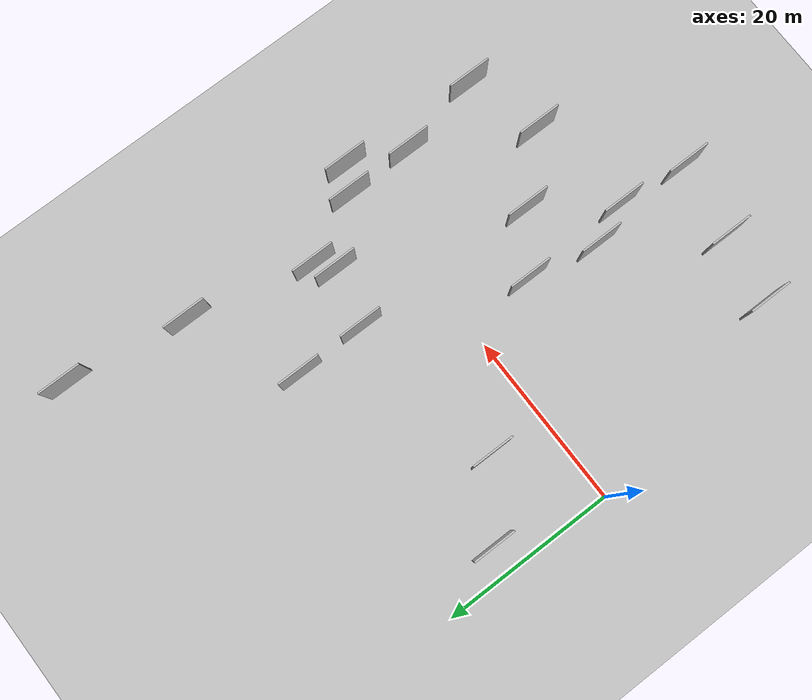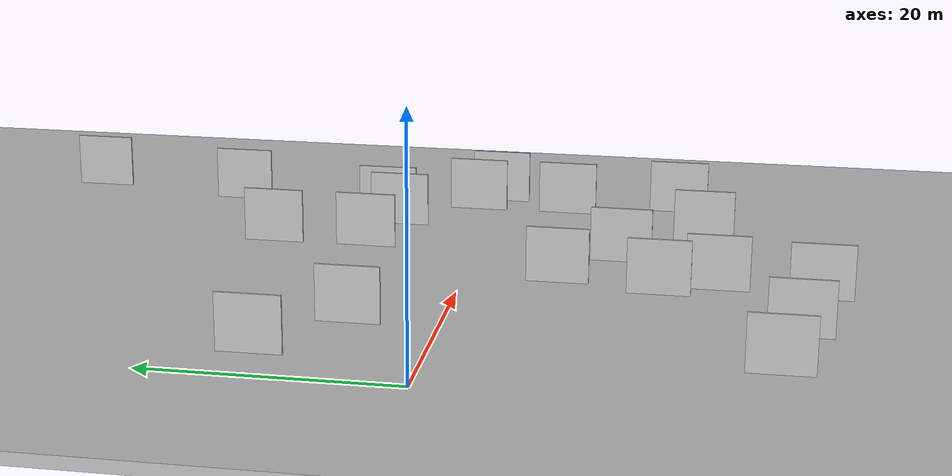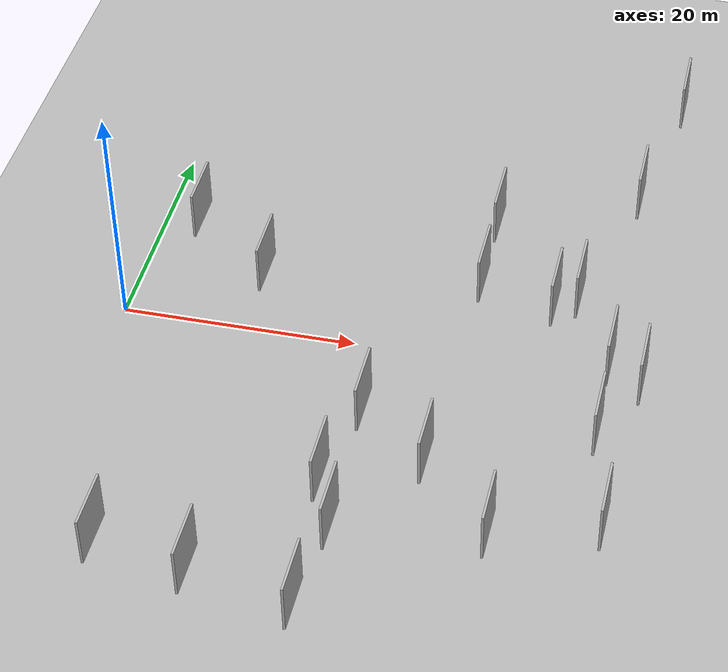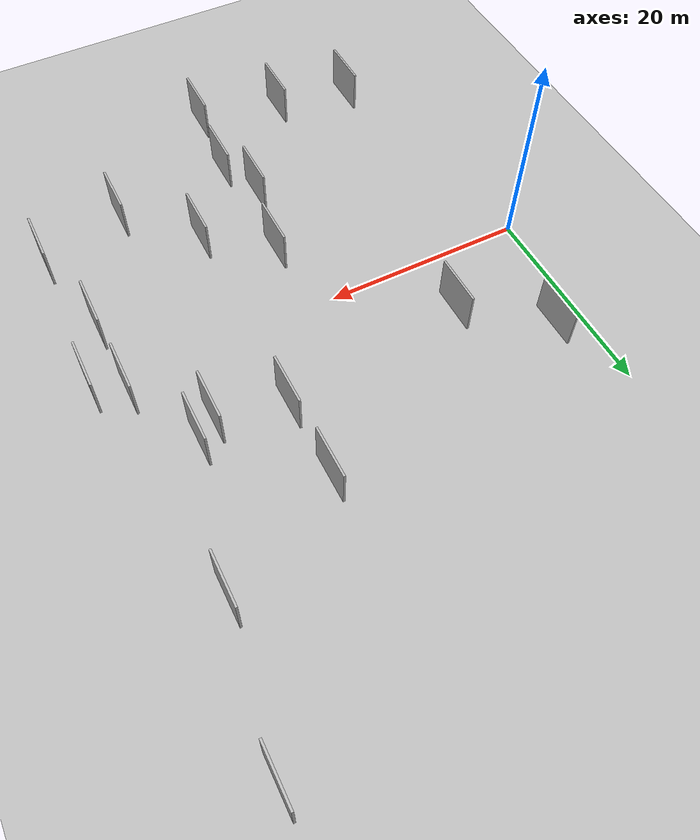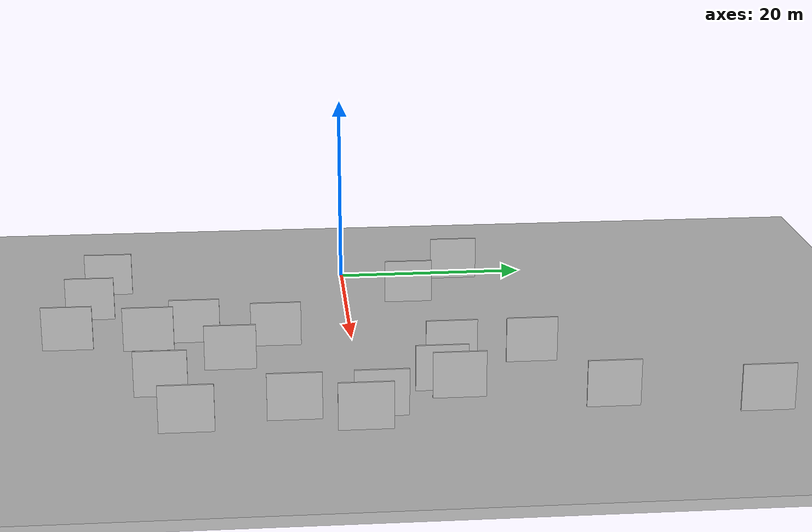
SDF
<?xml version="1.0" encoding="utf-8"?>

<sdf version="1.6">

   <world name="default">

      <gui fullscreen="0">

         <camera name="user_camera">

            <pose>-15 0 4.57585 0 0 0</pose>

            <view_controller>orbit</view_controller>

         </camera>

      </gui>

      <scene>

         <sky>

           <clouds>

             <speed>12</speed>

           </clouds>

         </sky>

         <ambient>0.4 0.4 0.4 1</ambient>

         <background>0.7 0.7 0.7 1</background>

         <shadows>1</shadows>

      </scene>

      <gravity>0 0 -9.8066</gravity>

      <magnetic_field>6e-06 2.3e-05 -4.2e-05</magnetic_field>

      <physics default="0" name="default_physics" type="ode">

         <ode>

            <solver>

               <type>quick</type>

               <iters>10</iters>

               <sor>1.0</sor>

               <use_dynamic_moi_rescaling>0</use_dynamic_moi_rescaling>

            </solver>

            <constraints>

               <cfm>0</cfm>

               <erp>0.2</erp>

               <contact_max_correcting_vel>100</contact_max_correcting_vel>

               <contact_surface_layer>0.001</contact_surface_layer>

            </constraints>

         </ode>

         <max_step_size>0.004</max_step_size>

         <real_time_factor>1</real_time_factor>

         <real_time_update_rate>250</real_time_update_rate>

      </physics>

      <light name="sun" type="directional">

         <cast_shadows>1</cast_shadows>

         <pose>0 0 10 0 0 0</pose>

         <diffuse>0.8 0.8 0.8 1</diffuse>

         <specular>0.2 0.2 0.2 1</specular>

         <attenuation>

            <range>1000</range>

            <constant>0.9</constant>

            <linear>0.01</linear>

            <quadratic>0.001</quadratic>

         </attenuation>

         <direction>-0.5 0.1 -0.9</direction>

      </light>

      <include>

         <name>ground_plane_1</name>

         <uri>model://HANNAS_ground_plane</uri>

         <pose>0 0 0  0 0 0</pose>

      </include>

      <include>

         <name>ground_plane_2</name>

         <uri>model://HANNAS_ground_plane</uri>

         <pose>100 0 0  0 0 0</pose>

      </include>

      <model name="HANNAS_wall_1">

         <static>1</static>

         <pose frame="">28.6454 -12.1876 0.0 0.000000 0.000000 1.570796</pose>

         <link name="link">

            <pose frame="">0 0 2.50 0 0 0</pose>

            <collision name="collision">

               <geometry>

                  <box>

                     <size>5.00 0.2 5.00</size>

                  </box>

               </geometry>

               <max_contacts>10</max_contacts>

               <surface>

                  <contact>

                     <ode/>

                  </contact>

                  <bounce/>

                  <friction>

                     <torsional>

                        <ode/>

                     </torsional>

                     <ode/>

                  </friction>

               </surface>

            </collision>

            <visual name="visual">

               <cast_shadows>0</cast_shadows>

               <geometry>

                  <box>

                     <size>5.00 0.2 5.00</size>

                  </box>

               </geometry>

               <material>

                  <script>

                     <uri>model://HANNAS_wall/materials/scripts</uri>

                     <uri>model://HANNAS_wall/materials/textures</uri>

                     <name>vrc/HANNAS_wall</name>

                  </script>

               </material>

            </visual>

            <self_collide>0</self_collide>

            <enable_wind>0</enable_wind>

            <kinematic>0</kinematic>

         </link>

      </model>

      <model name="HANNAS_wall_2">

         <static>1</static>

         <pose frame="">22.1348 -28.3118 0.0 0.000000 0.000000 1.570796</pose>

         <link name="link">

            <pose frame="">0 0 2.50 0 0 0</pose>

            <collision name="collision">

               <geometry>

                  <box>

                     <size>5.00 0.2 5.00</size>

                  </box>

               </geometry>

               <max_contacts>10</max_contacts>

               <surface>

                  <contact>

                     <ode/>

                  </contact>

                  <bounce/>

                  <friction>

                     <torsional>

                        <ode/>

                     </torsional>

                     <ode/>

                  </friction>

               </surface>

            </collision>

            <visual name="visual">

               <cast_shadows>0</cast_shadows>

               <geometry>

                  <box>

                     <size>5.00 0.2 5.00</size>

                  </box>

               </geometry>

               <material>

                  <script>

                     <uri>model://HANNAS_wall/materials/scripts</uri>

                     <uri>model://HANNAS_wall/materials/textures</uri>

                     <name>vrc/HANNAS_wall</name>

                  </script>

               </material>

            </visual>

            <self_collide>0</self_collide>

            <enable_wind>0</enable_wind>

            <kinematic>0</kinematic>

         </link>

      </model>

      <model name="HANNAS_wall_3">

         <static>1</static>

         <pose frame="">10.5982 6.6313 0.0 0.000000 0.000000 1.570796</pose>

         <link name="link">

            <pose frame="">0 0 2.50 0 0 0</pose>

            <collision name="collision">

               <geometry>

                  <box>

                     <size>5.00 0.2 5.00</size>

                  </box>

               </geometry>

               <max_contacts>10</max_contacts>

               <surface>

                  <contact>

                     <ode/>

                  </contact>

                  <bounce/>

                  <friction>

                     <torsional>

                        <ode/>

                     </torsional>

                     <ode/>

                  </friction>

               </surface>

            </collision>

            <visual name="visual">

               <cast_shadows>0</cast_shadows>

               <geometry>

                  <box>

                     <size>5.00 0.2 5.00</size>

                  </box>

               </geometry>

               <material>

                  <script>

                     <uri>model://HANNAS_wall/materials/scripts</uri>

                     <uri>model://HANNAS_wall/materials/textures</uri>

                     <name>vrc/HANNAS_wall</name>

                  </script>

               </material>

            </visual>

            <self_collide>0</self_collide>

            <enable_wind>0</enable_wind>

            <kinematic>0</kinematic>

         </link>

      </model>

      <model name="HANNAS_wall_4">

         <static>1</static>

         <pose frame="">21.0218 -15.7908 0.0 0.000000 0.000000 1.570796</pose>

         <link name="link">

            <pose frame="">0 0 2.50 0 0 0</pose>

            <collision name="collision">

               <geometry>

                  <box>

                     <size>5.00 0.2 5.00</size>

                  </box>

               </geometry>

               <max_contacts>10</max_contacts>

               <surface>

                  <contact>

                     <ode/>

                  </contact>

                  <bounce/>

                  <friction>

                     <torsional>

                        <ode/>

                     </torsional>

                     <ode/>

                  </friction>

               </surface>

            </collision>

            <visual name="visual">

               <cast_shadows>0</cast_shadows>

               <geometry>

                  <box>

                     <size>5.00 0.2 5.00</size>

                  </box>

               </geometry>

               <material>

                  <script>

                     <uri>model://HANNAS_wall/materials/scripts</uri>

                     <uri>model://HANNAS_wall/materials/textures</uri>

                     <name>vrc/HANNAS_wall</name>

                  </script>

               </material>

            </visual>

            <self_collide>0</self_collide>

            <enable_wind>0</enable_wind>

            <kinematic>0</kinematic>

         </link>

      </model>

      <model name="HANNAS_wall_5">

         <static>1</static>

         <pose frame="">22.5638 -7.6888 0.0 0.000000 0.000000 1.570796</pose>

         <link name="link">

            <pose frame="">0 0 2.50 0 0 0</pose>

            <collision name="collision">

               <geometry>

                  <box>

                     <size>5.00 0.2 5.00</size>

                  </box>

               </geometry>

               <max_contacts>10</max_contacts>

               <surface>

                  <contact>

                     <ode/>

                  </contact>

                  <bounce/>

                  <friction>

                     <torsional>

                        <ode/>

                     </torsional>

                     <ode/>

                  </friction>

               </surface>

            </collision>

            <visual name="visual">

               <cast_shadows>0</cast_shadows>

               <geometry>

                  <box>

                     <size>5.00 0.2 5.00</size>

                  </box>

               </geometry>

               <material>

                  <script>

                     <uri>model://HANNAS_wall/materials/scripts</uri>

                     <uri>model://HANNAS_wall/materials/textures</uri>

                     <name>vrc/HANNAS_wall</name>

                  </script>

               </material>

            </visual>

            <self_collide>0</self_collide>

            <enable_wind>0</enable_wind>

            <kinematic>0</kinematic>

         </link>

      </model>

      <model name="HANNAS_wall_6">

         <static>1</static>

         <pose frame="">41.3682 -6.3528 0.0 0.000000 0.000000 1.570796</pose>

         <link name="link">

            <pose frame="">0 0 2.50 0 0 0</pose>

            <collision name="collision">

               <geometry>

                  <box>

                     <size>5.00 0.2 5.00</size>

                  </box>

               </geometry>

               <max_contacts>10</max_contacts>

               <surface>

                  <contact>

                     <ode/>

                  </contact>

                  <bounce/>

                  <friction>

                     <torsional>

                        <ode/>

                     </torsional>

                     <ode/>

                  </friction>

               </surface>

            </collision>

            <visual name="visual">

               <cast_shadows>0</cast_shadows>

               <geometry>

                  <box>

                     <size>5.00 0.2 5.00</size>

                  </box>

               </geometry>

               <material>

                  <script>

                     <uri>model://HANNAS_wall/materials/scripts</uri>

                     <uri>model://HANNAS_wall/materials/textures</uri>

                     <name>vrc/HANNAS_wall</name>

                  </script>

               </material>

            </visual>

            <self_collide>0</self_collide>

            <enable_wind>0</enable_wind>

            <kinematic>0</kinematic>

         </link>

      </model>

      <model name="HANNAS_wall_7">

         <static>1</static>

         <pose frame="">34.8603 -18.6025 0.0 0.000000 0.000000 1.570796</pose>

         <link name="link">

            <pose frame="">0 0 2.50 0 0 0</pose>

            <collision name="collision">

               <geometry>

                  <box>

                     <size>5.00 0.2 5.00</size>

                  </box>

               </geometry>

               <max_contacts>10</max_contacts>

               <surface>

                  <contact>

                     <ode/>

                  </contact>

                  <bounce/>

                  <friction>

                     <torsional>

                        <ode/>

                     </torsional>

                     <ode/>

                  </friction>

               </surface>

            </collision>

            <visual name="visual">

               <cast_shadows>0</cast_shadows>

               <geometry>

                  <box>

                     <size>5.00 0.2 5.00</size>

                  </box>

               </geometry>

               <material>

                  <script>

                     <uri>model://HANNAS_wall/materials/scripts</uri>

                     <uri>model://HANNAS_wall/materials/textures</uri>

                     <name>vrc/HANNAS_wall</name>

                  </script>

               </material>

            </visual>

            <self_collide>0</self_collide>

            <enable_wind>0</enable_wind>

            <kinematic>0</kinematic>

         </link>

      </model>

      <model name="HANNAS_wall_8">

         <static>1</static>

         <pose frame="">13.5026 -26.7712 0.0 0.000000 0.000000 1.570796</pose>

         <link name="link">

            <pose frame="">0 0 2.50 0 0 0</pose>

            <collision name="collision">

               <geometry>

                  <box>

                     <size>5.00 0.2 5.00</size>

                  </box>

               </geometry>

               <max_contacts>10</max_contacts>

               <surface>

                  <contact>

                     <ode/>

                  </contact>

                  <bounce/>

                  <friction>

                     <torsional>

                        <ode/>

                     </torsional>

                     <ode/>

                  </friction>

               </surface>

            </collision>

            <visual name="visual">

               <cast_shadows>0</cast_shadows>

               <geometry>

                  <box>

                     <size>5.00 0.2 5.00</size>

                  </box>

               </geometry>

               <material>

                  <script>

                     <uri>model://HANNAS_wall/materials/scripts</uri>

                     <uri>model://HANNAS_wall/materials/textures</uri>

                     <name>vrc/HANNAS_wall</name>

                  </script>

               </material>

            </visual>

            <self_collide>0</self_collide>

            <enable_wind>0</enable_wind>

            <kinematic>0</kinematic>

         </link>

      </model>

      <model name="HANNAS_wall_9">

         <static>1</static>

         <pose frame="">29.1081 9.2058 0.0 0.000000 0.000000 1.570796</pose>

         <link name="link">

            <pose frame="">0 0 2.50 0 0 0</pose>

            <collision name="collision">

               <geometry>

                  <box>

                     <size>5.00 0.2 5.00</size>

                  </box>

               </geometry>

               <max_contacts>10</max_contacts>

               <surface>

                  <contact>

                     <ode/>

                  </contact>

                  <bounce/>

                  <friction>

                     <torsional>

                        <ode/>

                     </torsional>

                     <ode/>

                  </friction>

               </surface>

            </collision>

            <visual name="visual">

               <cast_shadows>0</cast_shadows>

               <geometry>

                  <box>

                     <size>5.00 0.2 5.00</size>

                  </box>

               </geometry>

               <material>

                  <script>

                     <uri>model://HANNAS_wall/materials/scripts</uri>

                     <uri>model://HANNAS_wall/materials/textures</uri>

                     <name>vrc/HANNAS_wall</name>

                  </script>

               </material>

            </visual>

            <self_collide>0</self_collide>

            <enable_wind>0</enable_wind>

            <kinematic>0</kinematic>

         </link>

      </model>

      <model name="HANNAS_wall_10">

         <static>1</static>

         <pose frame="">42.8829 36.6577 0.0 0.000000 0.000000 1.570796</pose>

         <link name="link">

            <pose frame="">0 0 2.50 0 0 0</pose>

            <collision name="collision">

               <geometry>

                  <box>

                     <size>5.00 0.2 5.00</size>

                  </box>

               </geometry>

               <max_contacts>10</max_contacts>

               <surface>

                  <contact>

                     <ode/>

                  </contact>

                  <bounce/>

                  <friction>

                     <torsional>

                        <ode/>

                     </torsional>

                     <ode/>

                  </friction>

               </surface>

            </collision>

            <visual name="visual">

               <cast_shadows>0</cast_shadows>

               <geometry>

                  <box>

                     <size>5.00 0.2 5.00</size>

                  </box>

               </geometry>

               <material>

                  <script>

                     <uri>model://HANNAS_wall/materials/scripts</uri>

                     <uri>model://HANNAS_wall/materials/textures</uri>

                     <name>vrc/HANNAS_wall</name>

                  </script>

               </material>

            </visual>

            <self_collide>0</self_collide>

            <enable_wind>0</enable_wind>

            <kinematic>0</kinematic>

         </link>

      </model>

      <model name="HANNAS_wall_11">

         <static>1</static>

         <pose frame="">37.4778 9.0124 0.0 0.000000 0.000000 1.570796</pose>

         <link name="link">

            <pose frame="">0 0 2.50 0 0 0</pose>

            <collision name="collision">

               <geometry>

                  <box>

                     <size>5.00 0.2 5.00</size>

                  </box>

               </geometry>

               <max_contacts>10</max_contacts>

               <surface>

                  <contact>

                     <ode/>

                  </contact>

                  <bounce/>

                  <friction>

                     <torsional>

                        <ode/>

                     </torsional>

                     <ode/>

                  </friction>

               </surface>

            </collision>

            <visual name="visual">

               <cast_shadows>0</cast_shadows>

               <geometry>

                  <box>

                     <size>5.00 0.2 5.00</size>

                  </box>

               </geometry>

               <material>

                  <script>

                     <uri>model://HANNAS_wall/materials/scripts</uri>

                     <uri>model://HANNAS_wall/materials/textures</uri>

                     <name>vrc/HANNAS_wall</name>

                  </script>

               </material>

            </visual>

            <self_collide>0</self_collide>

            <enable_wind>0</enable_wind>

            <kinematic>0</kinematic>

         </link>

      </model>

      <model name="HANNAS_wall_12">

         <static>1</static>

         <pose frame="">41.2014 1.5104 0.0 0.000000 0.000000 1.570796</pose>

         <link name="link">

            <pose frame="">0 0 2.50 0 0 0</pose>

            <collision name="collision">

               <geometry>

                  <box>

                     <size>5.00 0.2 5.00</size>

                  </box>

               </geometry>

               <max_contacts>10</max_contacts>

               <surface>

                  <contact>

                     <ode/>

                  </contact>

                  <bounce/>

                  <friction>

                     <torsional>

                        <ode/>

                     </torsional>

                     <ode/>

                  </friction>

               </surface>

            </collision>

            <visual name="visual">

               <cast_shadows>0</cast_shadows>

               <geometry>

                  <box>

                     <size>5.00 0.2 5.00</size>

                  </box>

               </geometry>

               <material>

                  <script>

                     <uri>model://HANNAS_wall/materials/scripts</uri>

                     <uri>model://HANNAS_wall/materials/textures</uri>

                     <name>vrc/HANNAS_wall</name>

                  </script>

               </material>

            </visual>

            <self_collide>0</self_collide>

            <enable_wind>0</enable_wind>

            <kinematic>0</kinematic>

         </link>

      </model>

      <model name="HANNAS_wall_13">

         <static>1</static>

         <pose frame="">22.9232 -20.3038 0.0 0.000000 0.000000 1.570796</pose>

         <link name="link">

            <pose frame="">0 0 2.50 0 0 0</pose>

            <collision name="collision">

               <geometry>

                  <box>

                     <size>5.00 0.2 5.00</size>

                  </box>

               </geometry>

               <max_contacts>10</max_contacts>

               <surface>

                  <contact>

                     <ode/>

                  </contact>

                  <bounce/>

                  <friction>

                     <torsional>

                        <ode/>

                     </torsional>

                     <ode/>

                  </friction>

               </surface>

            </collision>

            <visual name="visual">

               <cast_shadows>0</cast_shadows>

               <geometry>

                  <box>

                     <size>5.00 0.2 5.00</size>

                  </box>

               </geometry>

               <material>

                  <script>

                     <uri>model://HANNAS_wall/materials/scripts</uri>

                     <uri>model://HANNAS_wall/materials/textures</uri>

                     <name>vrc/HANNAS_wall</name>

                  </script>

               </material>

            </visual>

            <self_collide>0</self_collide>

            <enable_wind>0</enable_wind>

            <kinematic>0</kinematic>

         </link>

      </model>

      <model name="HANNAS_wall_14">

         <static>1</static>

         <pose frame="">35.5933 7.5890 0.0 0.000000 0.000000 1.570796</pose>

         <link name="link">

            <pose frame="">0 0 2.50 0 0 0</pose>

            <collision name="collision">

               <geometry>

                  <box>

                     <size>5.00 0.2 5.00</size>

                  </box>

               </geometry>

               <max_contacts>10</max_contacts>

               <surface>

                  <contact>

                     <ode/>

                  </contact>

                  <bounce/>

                  <friction>

                     <torsional>

                        <ode/>

                     </torsional>

                     <ode/>

                  </friction>

               </surface>

            </collision>

            <visual name="visual">

               <cast_shadows>0</cast_shadows>

               <geometry>

                  <box>

                     <size>5.00 0.2 5.00</size>

                  </box>

               </geometry>

               <material>

                  <script>

                     <uri>model://HANNAS_wall/materials/scripts</uri>

                     <uri>model://HANNAS_wall/materials/textures</uri>

                     <name>vrc/HANNAS_wall</name>

                  </script>

               </material>

            </visual>

            <self_collide>0</self_collide>

            <enable_wind>0</enable_wind>

            <kinematic>0</kinematic>

         </link>

      </model>

      <model name="HANNAS_wall_15">

         <static>1</static>

         <pose frame="">3.2095 12.2558 0.0 0.000000 0.000000 1.570796</pose>

         <link name="link">

            <pose frame="">0 0 2.50 0 0 0</pose>

            <collision name="collision">

               <geometry>

                  <box>

                     <size>5.00 0.2 5.00</size>

                  </box>

               </geometry>

               <max_contacts>10</max_contacts>

               <surface>

                  <contact>

                     <ode/>

                  </contact>

                  <bounce/>

                  <friction>

                     <torsional>

                        <ode/>

                     </torsional>

                     <ode/>

                  </friction>

               </surface>

            </collision>

            <visual name="visual">

               <cast_shadows>0</cast_shadows>

               <geometry>

                  <box>

                     <size>5.00 0.2 5.00</size>

                  </box>

               </geometry>

               <material>

                  <script>

                     <uri>model://HANNAS_wall/materials/scripts</uri>

                     <uri>model://HANNAS_wall/materials/textures</uri>

                     <name>vrc/HANNAS_wall</name>

                  </script>

               </material>

            </visual>

            <self_collide>0</self_collide>

            <enable_wind>0</enable_wind>

            <kinematic>0</kinematic>

         </link>

      </model>

      <model name="HANNAS_wall_16">

         <static>1</static>

         <pose frame="">44.0792 -0.1010 0.0 0.000000 0.000000 1.570796</pose>

         <link name="link">

            <pose frame="">0 0 2.50 0 0 0</pose>

            <collision name="collision">

               <geometry>

                  <box>

                     <size>5.00 0.2 5.00</size>

                  </box>

               </geometry>

               <max_contacts>10</max_contacts>

               <surface>

                  <contact>

                     <ode/>

                  </contact>

                  <bounce/>

                  <friction>

                     <torsional>

                        <ode/>

                     </torsional>

                     <ode/>

                  </friction>

               </surface>

            </collision>

            <visual name="visual">

               <cast_shadows>0</cast_shadows>

               <geometry>

                  <box>

                     <size>5.00 0.2 5.00</size>

                  </box>

               </geometry>

               <material>

                  <script>

                     <uri>model://HANNAS_wall/materials/scripts</uri>

                     <uri>model://HANNAS_wall/materials/textures</uri>

                     <name>vrc/HANNAS_wall</name>

                  </script>

               </material>

            </visual>

            <self_collide>0</self_collide>

            <enable_wind>0</enable_wind>

            <kinematic>0</kinematic>

         </link>

      </model>

      <model name="HANNAS_wall_17">

         <static>1</static>

         <pose frame="">28.9978 17.0803 0.0 0.000000 0.000000 1.570796</pose>

         <link name="link">

            <pose frame="">0 0 2.50 0 0 0</pose>

            <collision name="collision">

               <geometry>

                  <box>

                     <size>5.00 0.2 5.00</size>

                  </box>

               </geometry>

               <max_contacts>10</max_contacts>

               <surface>

                  <contact>

                     <ode/>

                  </contact>

                  <bounce/>

                  <friction>

                     <torsional>

                        <ode/>

                     </torsional>

                     <ode/>

                  </friction>

               </surface>

            </collision>

            <visual name="visual">

               <cast_shadows>0</cast_shadows>

               <geometry>

                  <box>

                     <size>5.00 0.2 5.00</size>

                  </box>

               </geometry>

               <material>

                  <script>

                     <uri>model://HANNAS_wall/materials/scripts</uri>

                     <uri>model://HANNAS_wall/materials/textures</uri>

                     <name>vrc/HANNAS_wall</name>

                  </script>

               </material>

            </visual>

            <self_collide>0</self_collide>

            <enable_wind>0</enable_wind>

            <kinematic>0</kinematic>

         </link>

      </model>

      <model name="HANNAS_wall_18">

         <static>1</static>

         <pose frame="">5.7080 -25.4048 0.0 0.000000 0.000000 1.570796</pose>

         <link name="link">

            <pose frame="">0 0 2.50 0 0 0</pose>

            <collision name="collision">

               <geometry>

                  <box>

                     <size>5.00 0.2 5.00</size>

                  </box>

               </geometry>

               <max_contacts>10</max_contacts>

               <surface>

                  <contact>

                     <ode/>

                  </contact>

                  <bounce/>

                  <friction>

                     <torsional>

                        <ode/>

                     </torsional>

                     <ode/>

                  </friction>

               </surface>

            </collision>

            <visual name="visual">

               <cast_shadows>0</cast_shadows>

               <geometry>

                  <box>

                     <size>5.00 0.2 5.00</size>

                  </box>

               </geometry>

               <material>

                  <script>

                     <uri>model://HANNAS_wall/materials/scripts</uri>

                     <uri>model://HANNAS_wall/materials/textures</uri>

                     <name>vrc/HANNAS_wall</name>

                  </script>

               </material>

            </visual>

            <self_collide>0</self_collide>

            <enable_wind>0</enable_wind>

            <kinematic>0</kinematic>

         </link>

      </model>

      <model name="HANNAS_wall_19">

         <static>1</static>

         <pose frame="">40.7548 22.8511 0.0 0.000000 0.000000 1.570796</pose>

         <link name="link">

            <pose frame="">0 0 2.50 0 0 0</pose>

            <collision name="collision">

               <geometry>

                  <box>

                     <size>5.00 0.2 5.00</size>

                  </box>

               </geometry>

               <max_contacts>10</max_contacts>

               <surface>

                  <contact>

                     <ode/>

                  </contact>

                  <bounce/>

                  <friction>

                     <torsional>

                        <ode/>

                     </torsional>

                     <ode/>

                  </friction>

               </surface>

            </collision>

            <visual name="visual">

               <cast_shadows>0</cast_shadows>

               <geometry>

                  <box>

                     <size>5.00 0.2 5.00</size>

                  </box>

               </geometry>

               <material>

                  <script>

                     <uri>model://HANNAS_wall/materials/scripts</uri>

                     <uri>model://HANNAS_wall/materials/textures</uri>

                     <name>vrc/HANNAS_wall</name>

                  </script>

               </material>

            </visual>

            <self_collide>0</self_collide>

            <enable_wind>0</enable_wind>

            <kinematic>0</kinematic>

         </link>

      </model>

      <model name="HANNAS_wall_20">

         <static>1</static>

         <pose frame="">43.3643 -15.9831 0.0 0.000000 0.000000 1.570796</pose>

         <link name="link">

            <pose frame="">0 0 2.50 0 0 0</pose>

            <collision name="collision">

               <geometry>

                  <box>

                     <size>5.00 0.2 5.00</size>

                  </box>

               </geometry>

               <max_contacts>10</max_contacts>

               <surface>

                  <contact>

                     <ode/>

                  </contact>

                  <bounce/>

                  <friction>

                     <torsional>

                        <ode/>

                     </torsional>

                     <ode/>

                  </friction>

               </surface>

            </collision>

            <visual name="visual">

               <cast_shadows>0</cast_shadows>

               <geometry>

                  <box>

                     <size>5.00 0.2 5.00</size>

                  </box>

               </geometry>

               <material>

                  <script>

                     <uri>model://HANNAS_wall/materials/scripts</uri>

                     <uri>model://HANNAS_wall/materials/textures</uri>

                     <name>vrc/HANNAS_wall</name>

                  </script>

               </material>

            </visual>

            <self_collide>0</self_collide>

            <enable_wind>0</enable_wind>

            <kinematic>0</kinematic>

         </link>

      </model>

   </world>

</sdf>

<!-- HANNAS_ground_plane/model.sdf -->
<sdf version="1.4">
<model name="HANNAS_ground_plane">
  <static>true</static>
    <link name="link">
      <collision name="collision">
        <geometry>
          <plane>
            <normal>0 0 1</normal>
            <size>1000 1000</size>
          </plane>
        </geometry>
        <surface>
          <friction>
            <ode>
              <mu>100</mu>
              <mu2>50</mu2>
            </ode>
          </friction>
        </surface>
      </collision>
      <visual name="visual">
        <cast_shadows>false</cast_shadows>
        <geometry>
          <plane>
            <normal>0 0 1</normal>
            <size>1000 1000</size>
          </plane>
        </geometry>
        <material>
          <script>
            <uri>model://HANNAS_ground_plane/materials/scripts/HANNAS_ground_plane.material</uri>
	    <uri>model://HANNAS_ground_plane/materials/textures</uri>
            <name>HANNASGroundPlane/Image</name>
          </script>
        </material>
      </visual>
    </link>
  </model>
</sdf>
